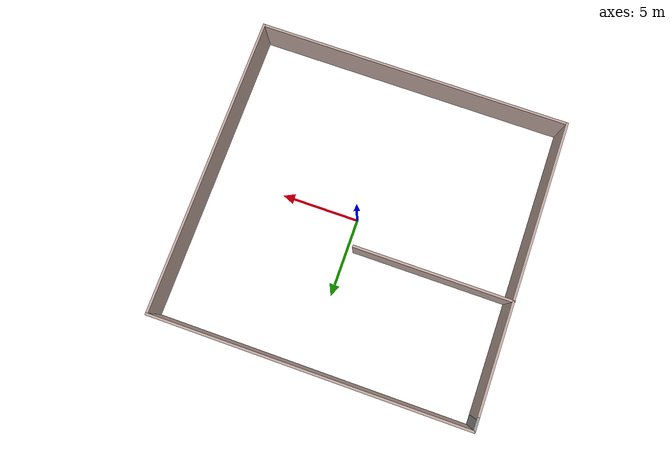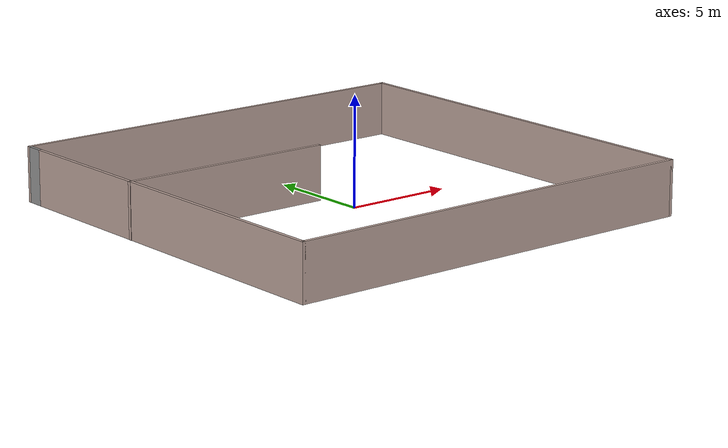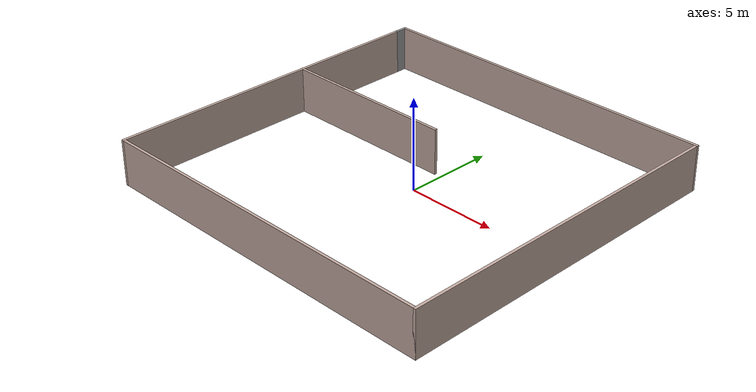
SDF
<?xml version='1.0'?>
<sdf version='1.7'>
  <model name='demo_base_wall'>
    <pose>-0.380252 0.057187 0 0 -0 0</pose>
    <link name='Wall_25'>
      <collision name='Wall_25_Collision'>
        <geometry>
          <box>
            <size>18.5 0.15 2.5</size>
          </box>
        </geometry>
        <pose>0 0 1.25 0 -0 0</pose>
      </collision>
      <visual name='Wall_25_Visual'>
        <pose>0 0 1.25 0 -0 0</pose>
        <geometry>
          <box>
            <size>18.5 0.15 2.5</size>
          </box>
        </geometry>
        <material>
          <script>
            <uri>file://media/materials/scripts/gazebo.material</uri>
            <name>Gazebo/Grey</name>
          </script>
          <ambient>0.760784 0.662745 0.627451 1</ambient>
        </material>
        <meta>
          <layer>0</layer>
        </meta>
      </visual>
      <pose>-9.91512 -0.375 0 0 -0 -1.5708</pose>
    </link>
    <link name='Wall_26'>
      <collision name='Wall_26_Collision'>
        <geometry>
          <box>
            <size>20 0.15 2.5</size>
          </box>
        </geometry>
        <pose>0 0 1.25 0 -0 0</pose>
      </collision>
      <visual name='Wall_26_Visual'>
        <pose>0 0 1.25 0 -0 0</pose>
        <geometry>
          <box>
            <size>20 0.15 2.5</size>
          </box>
        </geometry>
        <material>
          <script>
            <uri>file://media/materials/scripts/gazebo.material</uri>
            <name>Gazebo/Grey</name>
          </script>
          <ambient>0.760784 0.662745 0.627451 1</ambient>
        </material>
        <meta>
          <layer>0</layer>
        </meta>
      </visual>
      <pose>0.009879 -9.55 0 0 -0 0</pose>
    </link>
    <link name='Wall_28'>
      <collision name='Wall_28_Collision'>
        <geometry>
          <box>
            <size>19.25 0.15 2.5</size>
          </box>
        </geometry>
        <pose>0 0 1.25 0 -0 0</pose>
      </collision>
      <visual name='Wall_28_Visual'>
        <pose>0 0 1.25 0 -0 0</pose>
        <geometry>
          <box>
            <size>19.25 0.15 2.5</size>
          </box>
        </geometry>
        <material>
          <script>
            <uri>file://media/materials/scripts/gazebo.material</uri>
            <name>Gazebo/Grey</name>
          </script>
          <ambient>0.760784 0.662745 0.627451 1</ambient>
        </material>
        <meta>
          <layer>0</layer>
        </meta>
      </visual>
      <pose>9.93488 0 0 0 -0 1.5708</pose>
    </link>
    <link name='Wall_29'>
      <collision name='Wall_29_Collision'>
        <geometry>
          <box>
            <size>20 0.15 2.5</size>
          </box>
        </geometry>
        <pose>0 0 1.25 0 -0 0</pose>
      </collision>
      <visual name='Wall_29_Visual'>
        <pose>0 0 1.25 0 -0 0</pose>
        <geometry>
          <box>
            <size>20 0.15 2.5</size>
          </box>
        </geometry>
        <material>
          <script>
            <uri>file://media/materials/scripts/gazebo.material</uri>
            <name>Gazebo/Grey</name>
          </script>
          <ambient>0.760784 0.662745 0.627451 1</ambient>
        </material>
        <meta>
          <layer>0</layer>
        </meta>
      </visual>
      <pose>0.009879 9.55 0 0 -0 3.14159</pose>
    </link>
    <link name='Wall_30'>
      <collision name='Wall_30_Collision'>
        <geometry>
          <box>
            <size>0.9 0.15 2.5</size>
          </box>
        </geometry>
        <pose>0 0 1.25 0 -0 0</pose>
      </collision>
      <visual name='Wall_30_Visual'>
        <pose>0 0 1.25 0 -0 0</pose>
        <geometry>
          <box>
            <size>0.9 0.15 2.5</size>
          </box>
        </geometry>
        <material>
          <script>
            <uri>file://media/materials/scripts/gazebo.material</uri>
            <name>Gazebo/Grey</name>
          </script>
          <ambient>1 1 1 1</ambient>
        </material>
        <meta>
          <layer>0</layer>
        </meta>
      </visual>
      <pose>-9.91512 9.175 0 0 -0 -1.5708</pose>
    </link>
    <link name='Wall_33'>
      <collision name='Wall_33_Collision'>
        <geometry>
          <box>
            <size>10 0.15 2.5</size>
          </box>
        </geometry>
        <pose>0 0 1.25 0 -0 0</pose>
      </collision>
      <visual name='Wall_33_Visual'>
        <pose>0 0 1.25 0 -0 0</pose>
        <geometry>
          <box>
            <size>10 0.15 2.5</size>
          </box>
        </geometry>
        <material>
          <script>
            <uri>file://media/materials/scripts/gazebo.material</uri>
            <name>Gazebo/Grey</name>
          </script>
          <ambient>0.760784 0.662745 0.627451 1</ambient>
        </material>
        <meta>
          <layer>0</layer>
        </meta>
      </visual>
      <pose>-5.00988 1.8819 0 0 -0 0</pose>
    </link>
    <static>1</static>
  </model>
</sdf>
